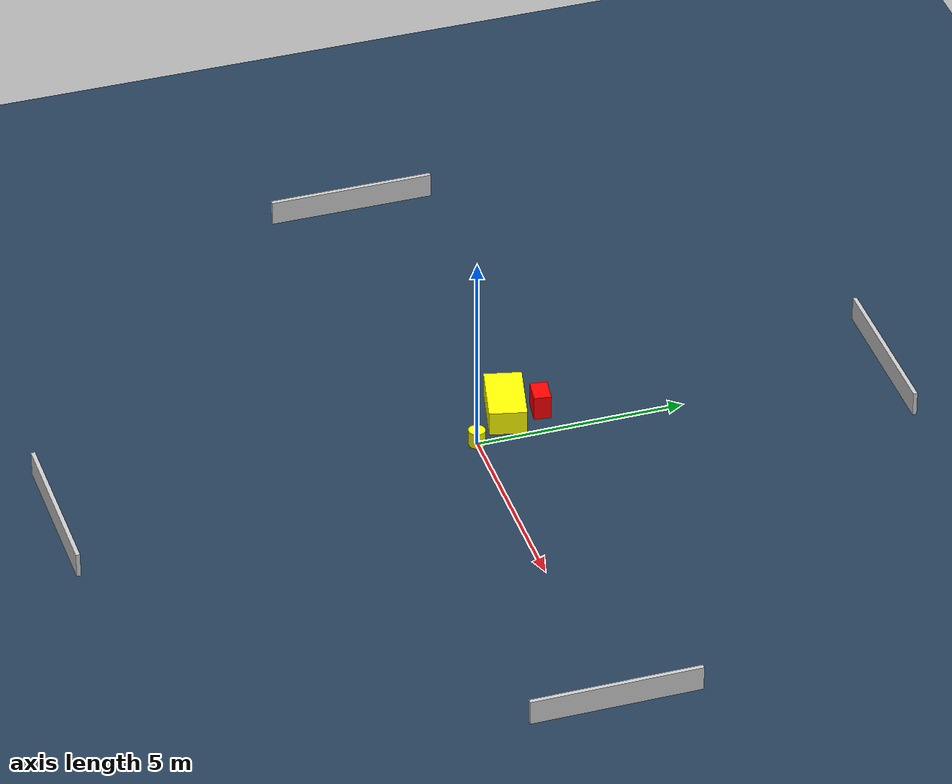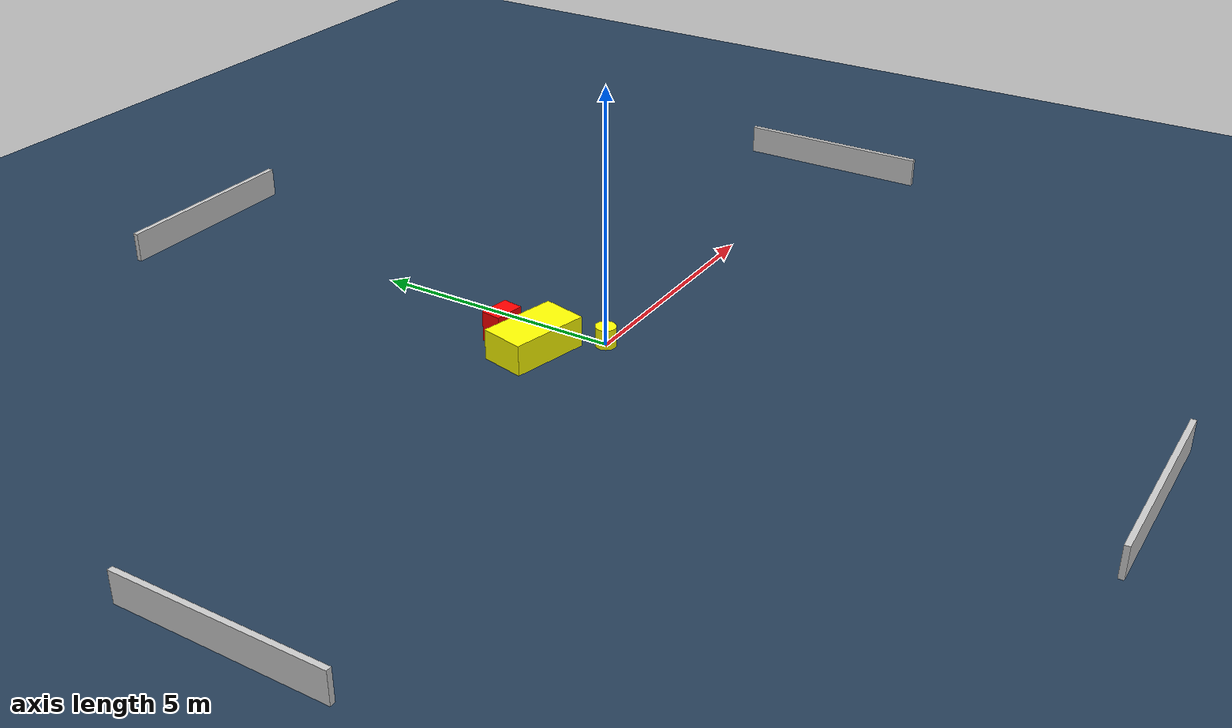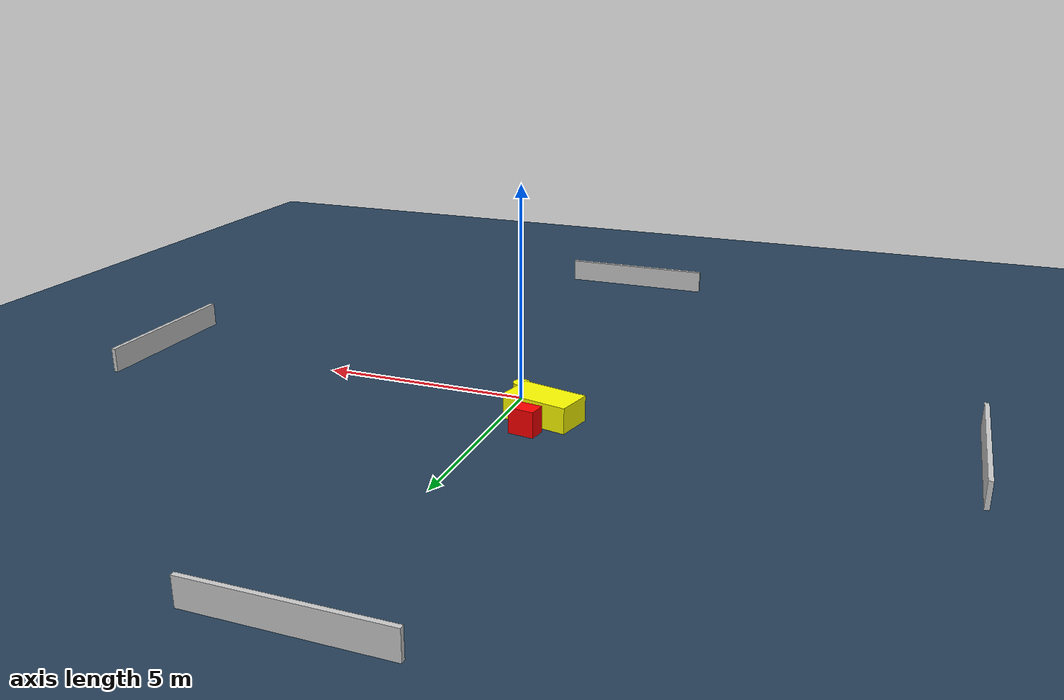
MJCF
<?xml version="1.0" ?>
<mujoco model="generated_environment">
  <option timestep="0.01" integrator="RK4" cone="elliptic"/>
  <default>
    <geom density="1"/>
  </default>
  <asset>
    <texture builtin="gradient" height="3072" name="skybox" rgb1="0.3 0.5 0.7" rgb2="0 0 0" type="skybox" width="512"/>
    <texture builtin="checker" height="300" name="groundplane" rgb1="0.2 0.3 0.4" rgb2="0.1 0.2 0.3" type="2d" width="300"/>
    <material name="groundplane" reflectance="0.2" texrepeat="5 5" texture="groundplane"/>
  </asset>
  <worldbody>
    <light dir="0 0 -1" directional="true" pos="0 0 1.5"/>
    <geom condim="3" friction="0.5 0.005 0.001" material="groundplane" name="floor" pos="0 0 0" size="0 0 0.05" type="plane"/>
    <body name="walls">
      <geom name="wall_1" condim="4" pos="-10.0 0.0 0.3" rgba="0.800000011920929 0.800000011920929 0.800000011920929 1.0" size="0.05 2.0 0.3" type="box"/>
      <geom name="wall_2" condim="4" pos="10.0 0.0 0.3" rgba="0.800000011920929 0.800000011920929 0.800000011920929 1.0" size="0.05 2.0 0.3" type="box"/>
      <geom name="wall_3" condim="4" pos="0.0 -10.0 0.3" rgba="0.800000011920929 0.800000011920929 0.800000011920929 1.0" size="2.0 0.05 0.3" type="box"/>
      <geom name="wall_4" condim="4" pos="0.0 10.0 0.3" rgba="0.800000011920929 0.800000011920929 0.800000011920929 1.0" size="2.0 0.05 0.3" type="box"/>
    </body>
    <body name="robot">
      <joint name="joint_x" type="slide" pos="0 0 0" axis="1 0 0"/>
      <joint name="joint_y" type="slide" pos="0 0 0" axis="0 1 0"/>
      <geom name="robot" type="cylinder" pos="0.0 0.0 0.2" size="0.2 0.2 0.0" mass="5.0" friction="1.0 0.005 0.0001" condim="4" rgba="1.0 1.0 0.0 1.0"/>
    </body>
    <body name="obstacle_1_movable">
      <geom name="obstacle_1_movable" condim="4" pos="-0.9075027148813601 0.9797493845993348 0.3" euler="0 0 76.82777652413371" friction="0.0 0.005 0.001" rgba="1.0 1.0 0.0 1.0" size="0.4465323938037674 0.7904077235978213 0.3" type="box" mass="0.1"/>
      <joint type="free"/>
    </body>
    <body name="obstacle_2_static">
      <geom name="obstacle_2_static" condim="4" pos="-0.7640457359871807 1.7869688006535616 0.3" euler="0 0 171.3654721463875" friction="0.0 0.005 0.001" rgba="1.0 0.0 0.0 1.0" size="0.30290932344948845 0.20482691881227125 0.3" type="box"/>
    </body>
  </worldbody>
  <actuator>
    <motor name="actuator_x" joint="joint_x" gear="1" ctrlrange="-1 1"/>
    <motor name="actuator_y" joint="joint_y" gear="1" ctrlrange="-1 1"/>
  </actuator>
</mujoco>
